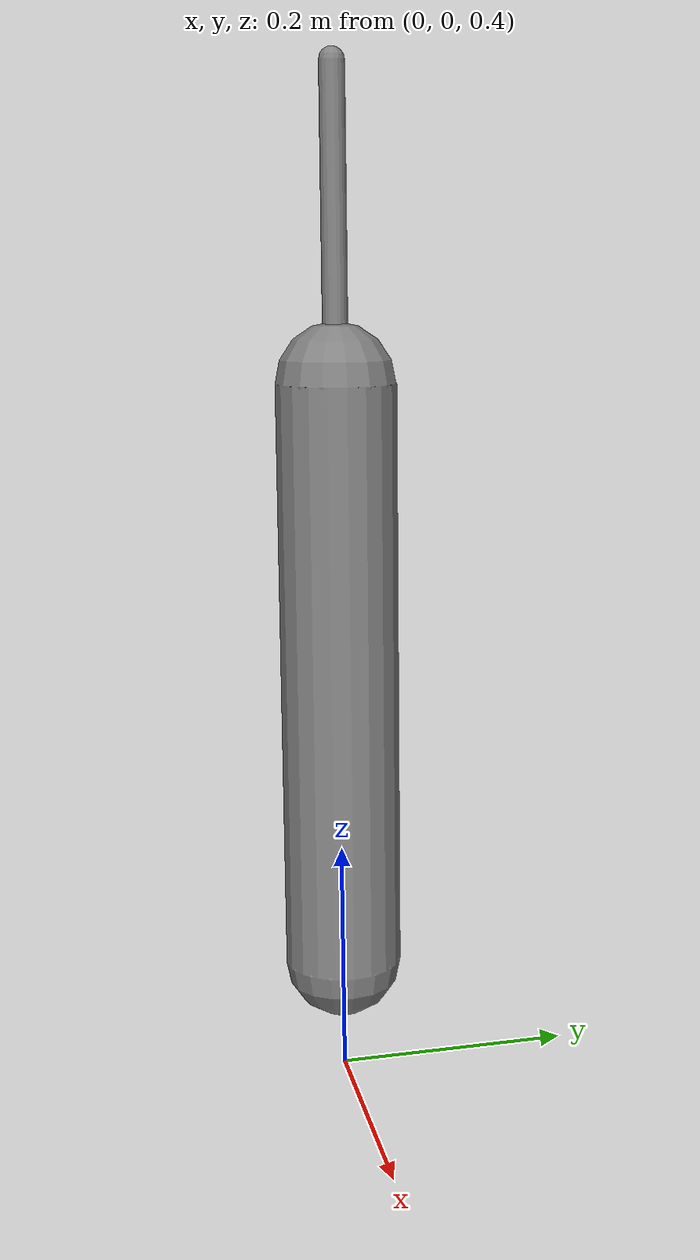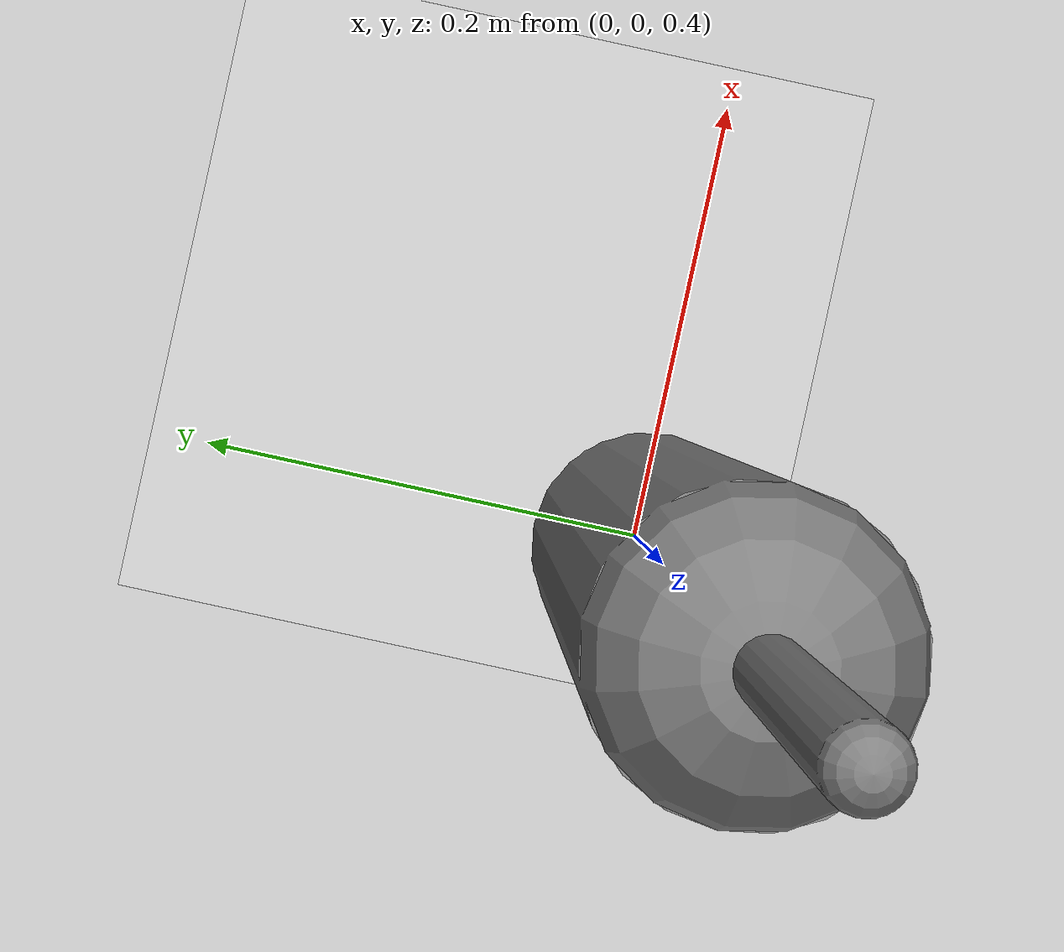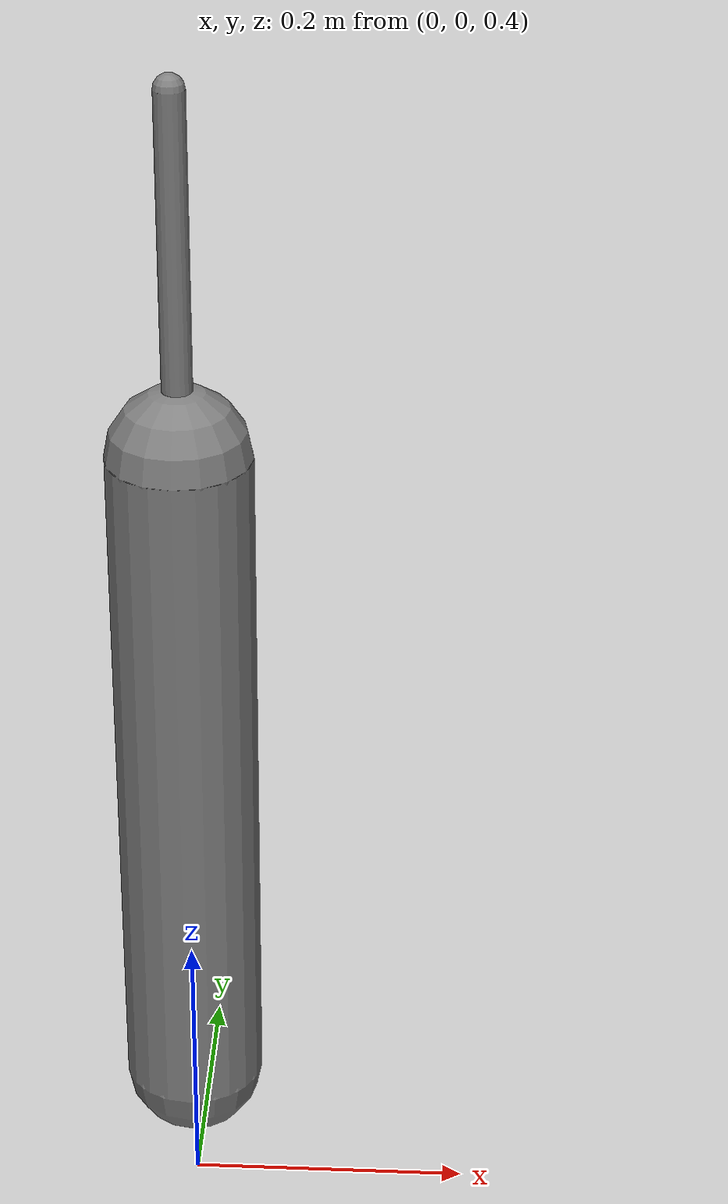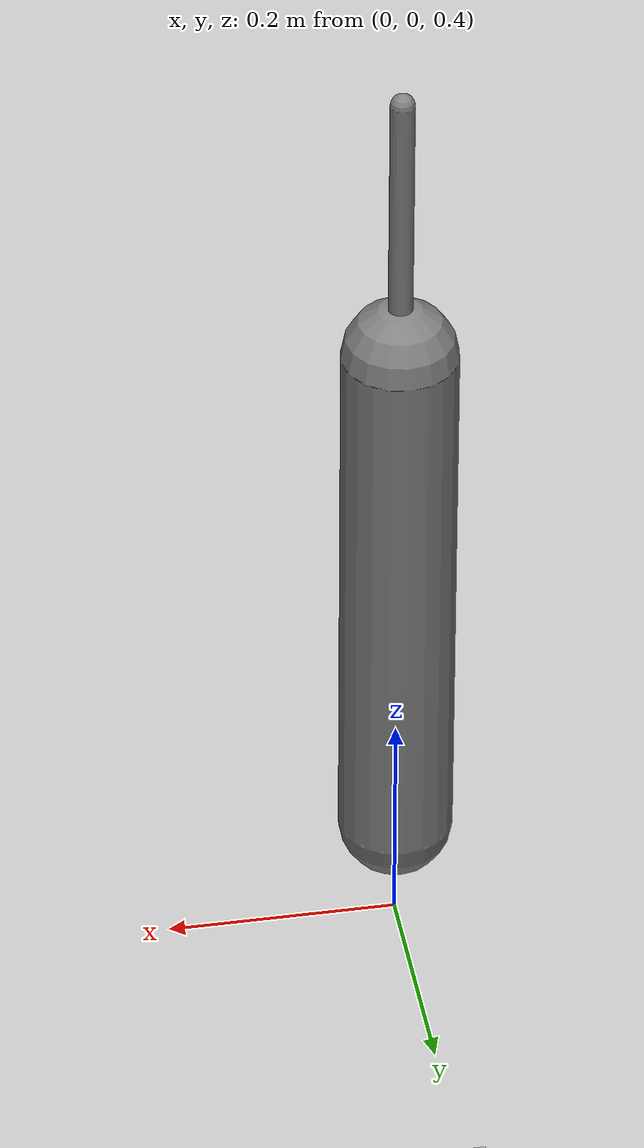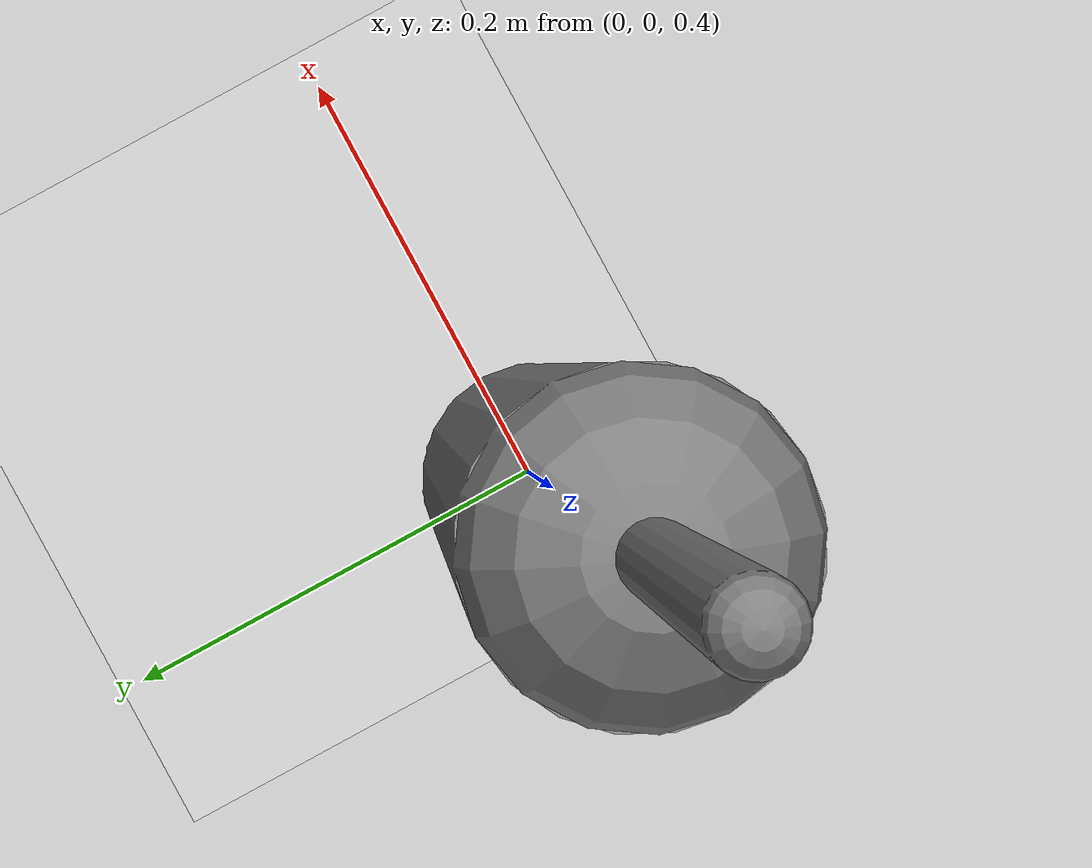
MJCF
<?xml version='1.0' encoding='UTF-8'?>
<mujoco model="RobotModel">
  <option gravity="0 0 -9.81" timestep="0.002" solver="CG" iterations="500" integrator="Euler"/>
  <worldbody>
    <geom name="Floor" type="plane" size="10 10 0.1" pos="0 0 0" rgba="0.8 0.8 0.8 1"/>
    <body name="Limb0" pos="0 0 0.5">
      <geom type="capsule" fromto="0 0 0 0 0 0.5" size="0.05" density="1000" contype="0" conaffinity="0"/>
      <body name="Limb0_c6e8b2c0" pos="0 0 0.5">
        <geom type="capsule" fromto="0 0 0 0 0 0.25156442455374556" size="0.010459582956090853" density="800" contype="0" conaffinity="0"/>
        <joint name="Joint_Limb0_Limb0_c6e8b2c0_0" type="hinge" axis="0 1 0" range="-60 60"/>
      </body>
    </body>
  </worldbody>
  <actuator>
    <position name="position_Actuator_Joint_Limb0_Limb0_c6e8b2c0_0" joint="Joint_Limb0_Limb0_c6e8b2c0_0" gear="1.0"/>
  </actuator>
</mujoco>
